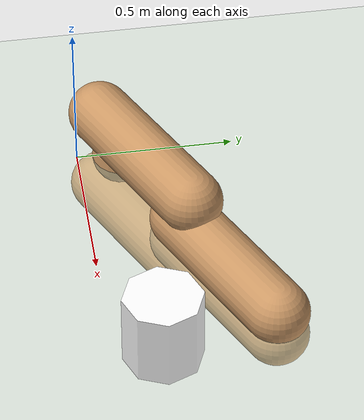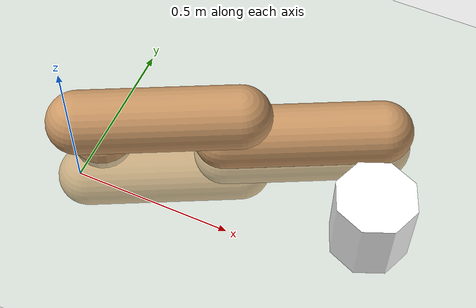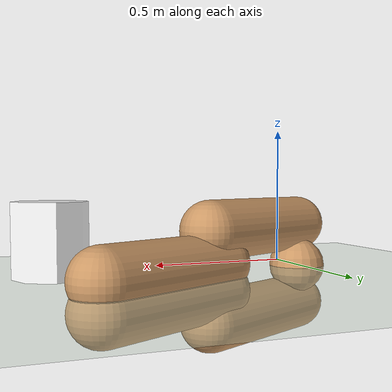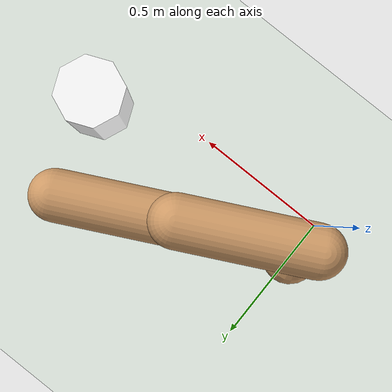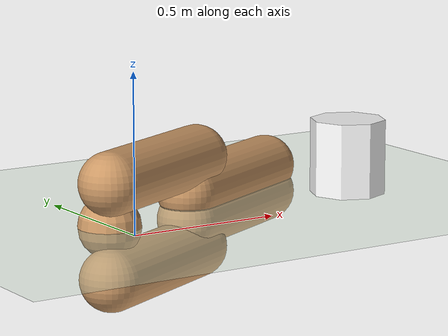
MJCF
<?xml version="1.0" encoding="utf-8"?>
<mujoco model="planar_gripper">
	<compiler angle="radian" coordinate="local" inertiafromgeom="true"/>
	<option integrator="RK4" timestep="0.01"/>
	<custom>
        <numeric name="init_qpos" data="0. 0.5 -0.6 0. -0.5 0.6"/>
	</custom>
	<default class="geom0">
		<joint armature="1" damping="1" limited="true" axis="0 1 0"/>
		<geom conaffinity="1" contype="1" condim="3" density="5.0" friction="1 0.5 0.5" margin="0.001" rgba="0.8 0.6 0.4 1"/>
	</default>
    <default class="geom1">
		<joint armature="1" damping="1" limited="true" axis="0 1 0"/>
		<geom conaffinity="1" contype="1" condim="3" density="10000.0" rgba="0.8 0.6 0.4 1"/>
	</default>
    <default class="geomroot">
		<geom conaffinity="1" contype="1" condim="3" density="5.0" friction="1 0.5 0.5" margin="0.001" rgba="0.8 0.6 0.4 1"/>
	</default>
	<asset>
		<texture builtin="gradient" height="100" rgb1="1 1 1" rgb2="0 0 0" type="skybox" width="100"/>
		<texture builtin="flat" height="1278" mark="cross" markrgb="1 1 1" name="texgeom" random="0.01" rgb1="0.8 0.6 0.4" rgb2="0.8 0.6 0.4" type="cube" width="127"/>
		<texture builtin="checker" height="100" name="texplane" rgb1="0 0 0" rgb2="0.8 0.8 0.8" type="2d" width="100"/>
		<material name="MatPlane" reflectance="0.5" shininess="1" specular="1" texrepeat="60 60" texture="texplane"/>
		<material name="geom" texture="texgeom" texuniform="true" rgba="1 1 1 1"/>
        <mesh name="Cylinder" file="cylinder.stl"/>
        <mesh name="OctPrism" file="octprism.stl"/>
        <mesh name="Ellipsoid" file="ellipsoid.stl"/>
        <mesh name="CapsuleShort" file="capsule.stl"/>
        <mesh name="CapsuleLong" file="capsule-2.stl"/>
	</asset>
	<worldbody>
		<light cutoff="100" diffuse="1 1 1" dir="0 0 -1.3" directional="true" exponent="1" pos="0 0 1.3" specular="0.1 0.1 0.1"/>
		<geom class="geom1" conaffinity="1" condim="3" material="MatPlane" name="floor" pos="0 0 0" rgba="0.8 0.9 0.8 1" size="40 40 40" type="plane"/>
		<body name="root" pos="0. 0. 0.">
			<camera mode="trackcom" name="track" pos="0 -3 0.3" xyaxes="1 0 0 0 0 1"/>
            <!-- Model base, raised by 0.15 due to root body transform being origin by default in Warp -->
			<geom name="root_geom" pos="0 0.15 0" size="0.1" type="sphere" class="geomroot"/>
            <joint axis="0 1 0" armature="0" damping="0" limited="true" margin="0.01" name="root" pos="0 0 0" type="hinge" range="-.1 .1"/>
			<body name="left_finger" pos="0.1 0.15 0.15" euler="0 0 90">
				<joint name="aux_joint_left_finger" range="-1 1" type="hinge" axis="0 0 1"/>
                <geom name="aux_geom_left_finger" size="0.001" type="sphere"/>
				<body name="proximal_body_left_finger" pos="0. -0.1 0." euler="0 0 0">
					<joint axis="1 0 0" name="proximal_joint_left_finger" pos="0.0 0.0 0.0" range="-90 0" type="hinge"/>
                    <geom class="geom0" name="proximal_geom_left_finger" size="1 1 1" type="mesh" mesh="CapsuleLong" contype="1" conaffinity="0"/>
					<body name="distal_body_left_finger" pos="0 -0.45 -0.11" euler="0 0 0">
						<joint axis="1 0 0" name="distal_joint_left_finger" range="0 60" type="hinge"/>
						<geom class="geom0" name="distal_geom_left_finger" size="1 1 1" type="mesh" mesh="CapsuleLong" contype="1" conaffinity="0"/>
					</body>
				</body>
			</body>
			<body name="right_finger" pos="0.1 0.15 -0.15" euler="0 0 90">
				<joint name="aux_joint_right_finger" range="-1 1" type="hinge" axis="0 0 1"/>
				<geom name="aux_geom_right_finger" size="0.001" type="sphere"/>
				<body name="proximal_body_right_finger" pos="0. -0.1 0." euler="0 0 0">
					<joint axis="0 1 0" name="proximal_joint_right_finger" pos="-0.2 0.0 0." range="0 90" type="hinge"/>
					<geom class="geom0" name="proximal_geom_right_finger" size="1 1 1" type="mesh" mesh="CapsuleLong" contype="1" conaffinity="0"/>
					<body name="distal_body_right_finger" pos="0. -0.45 0.1" euler="0 0 0">
						<joint axis="0 1 0" name="distal_joint_right_finger" pos="0.0 0.0 0.0" range="-60 0" type="hinge"/>
						<geom class="geom0" name="distal_geom_right_finger" size="1 1 1" type="mesh" mesh="CapsuleLong" contype="1" conaffinity="0"/>
					</body>
				</body>
			</body>
            <body name="object" pos="0.9 0.15 0." >
              <geom class="geom0" name="obj_com" rgba="1 1 1 0" type="sphere" size="0.1" contype="1" conaffinity="0"/>
              <geom class="geom0" name="obj_surface" rgba="1 1 1 1" type="mesh" mesh="OctPrism" size="2.5 2.5 2.5" contype="1" conaffinity="0"/>
              <joint name="obj_theta" type="hinge" pos="0 0 0" axis="0 1 0" range="-1 1" damping="0.5"/>
            </body>
		</body>

	</worldbody>
	<actuator>
		<motor ctrllimited="true" ctrlrange="-1.0 1.0" gear="150" joint="proximal_joint_left_finger"/>
		<motor ctrllimited="true" ctrlrange="-1.0 1.0" gear="150" joint="distal_joint_left_finger"/>
		<motor ctrllimited="true" ctrlrange="-1.0 1.0" gear="150" joint="proximal_joint_right_finger"/>
		<motor ctrllimited="true" ctrlrange="-1.0 1.0" gear="150" joint="distal_joint_right_finger"/>
	</actuator>
</mujoco>
